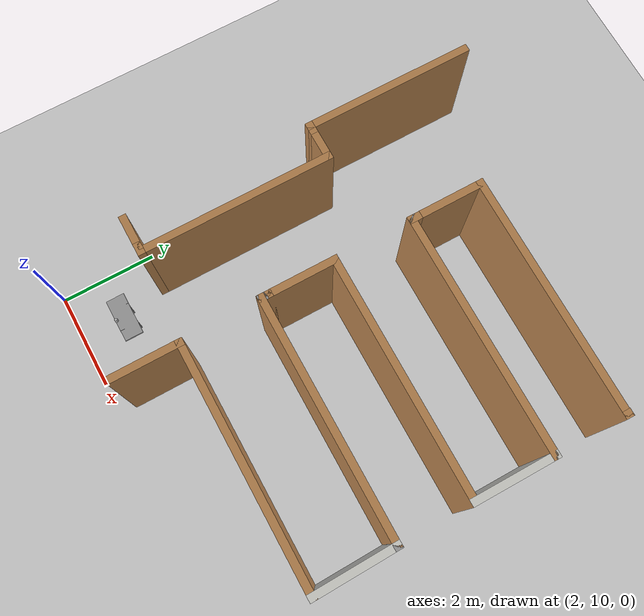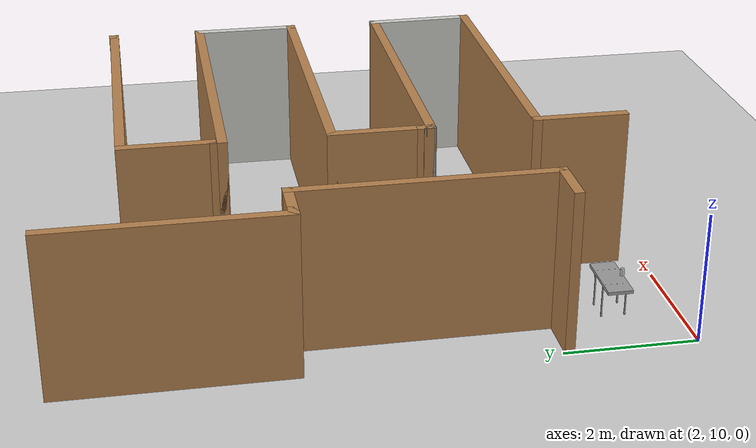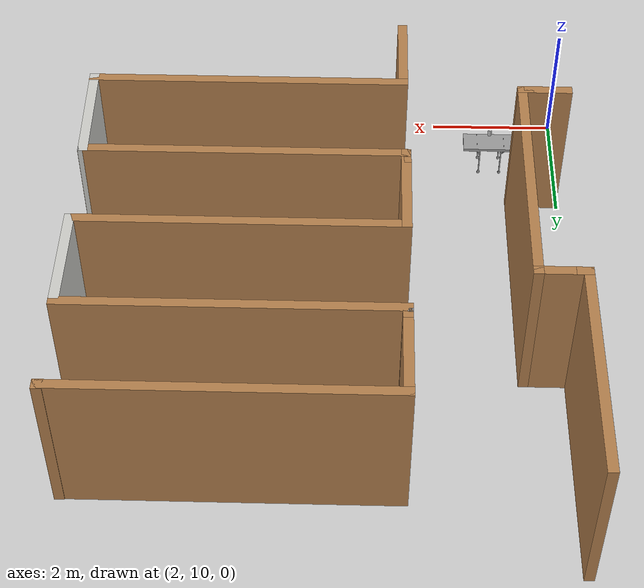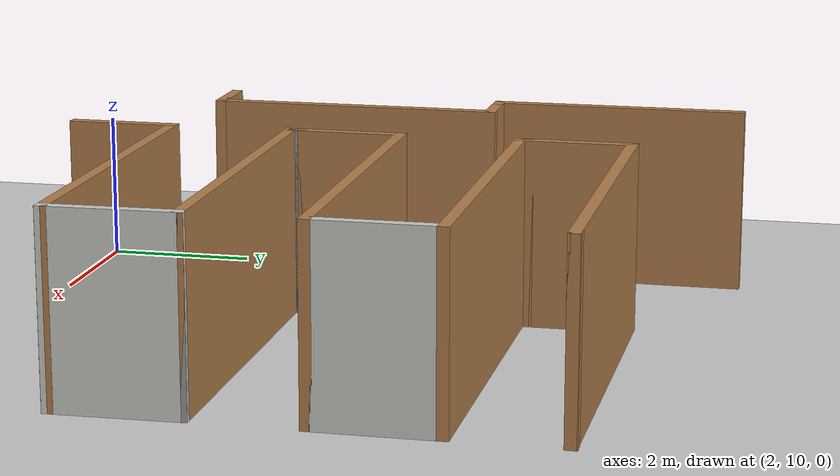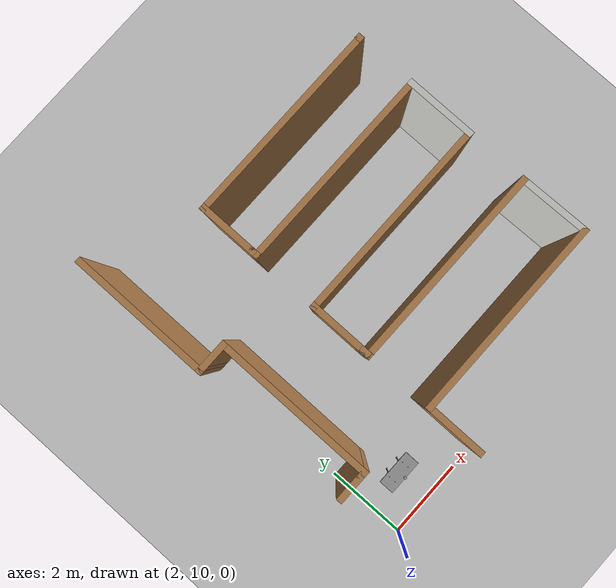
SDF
<sdf version="1.6">
 <world name="default">
  <model name="ground_plane">
   <static>1</static>
   <link name="link">
    <collision name="collision">
     <geometry><plane><normal>0 0 1</normal><size>100 100</size></plane></geometry>
     <surface>
      <contact><collide_bitmask>65535</collide_bitmask></contact>
      <friction><ode><mu>100</mu><mu2>50</mu2></ode></friction>
     </surface>
    </collision>
    <visual name="visual">
     <cast_shadows>0</cast_shadows>
     <geometry><plane><normal>0 0 1</normal><size>100 100</size></plane></geometry>
     <material>
      <script><uri>file://media/materials/scripts/gazebo.material</uri><name>Gazebo/Grey</name></script>
     </material>
    </visual>
   </link>
  </model>
  <model name="ecst_lab_v2">
   <pose>2.38151 7.60499 0 0 -0 -1.57079</pose>
   <link name="Wall_1">
    <collision name="Wall_1_Collision">
     <geometry><box><size>5 0.15 2.5</size></box></geometry>
     <pose>0 0 1.25 0 -0 0</pose>
    </collision>
    <visual name="Wall_1_Visual">
     <pose>0 0 1.25 0 -0 0</pose>
     <geometry><box><size>5 0.15 2.5</size></box></geometry>
     <material>
      <script><uri>file://media/materials/scripts/gazebo.material</uri><name>Gazebo/Wood</name></script>
      <ambient>1 1 1 1</ambient>
     </material>
     <meta><layer>0</layer></meta>
    </visual>
    <pose>-4.16301 4.67727 0 0 -0 -1.5708</pose>
   </link>
   <link name="Wall_117">
    <collision name="Wall_117_Collision">
     <geometry><box><size>0.16 0.15 2.5</size></box></geometry>
     <pose>0 0 1.25 0 -0 0</pose>
    </collision>
    <visual name="Wall_117_Visual">
     <pose>0 0 1.25 0 -0 0</pose>
     <geometry><box><size>0.16 0.15 2.5</size></box></geometry>
     <material>
      <script><uri>file://media/materials/scripts/gazebo.material</uri><name>Gazebo/Wood</name></script>
      <ambient>1 1 1 1</ambient>
     </material>
     <meta><layer>0</layer></meta>
    </visual>
    <pose>-10.3485 7.06822 0 0 -0 0</pose>
   </link>
   <link name="Wall_118">
    <collision name="Wall_118_Collision">
     <geometry><box><size>5 0.15 2.5</size></box></geometry>
     <pose>0 0 1.25 0 -0 0</pose>
    </collision>
    <visual name="Wall_118_Visual">
     <pose>0 0 1.25 0 -0 0</pose>
     <geometry><box><size>5 0.15 2.5</size></box></geometry>
     <material>
      <script><uri>file://media/materials/scripts/gazebo.material</uri><name>Gazebo/Wood</name></script>
      <ambient>1 1 1 1</ambient>
     </material>
     <meta><layer>0</layer></meta>
    </visual>
    <pose>-10.3435 4.64322 0 0 -0 -1.5708</pose>
   </link>
   <link name="Wall_119">
    <collision name="Wall_119_Collision">
     <geometry><box><size>1.5 0.15 2.5</size></box></geometry>
     <pose>0 0 1.25 0 -0 0</pose>
    </collision>
    <visual name="Wall_119_Visual">
     <pose>0 0 1.25 0 -0 0</pose>
     <geometry><box><size>1.5 0.15 2.5</size></box></geometry>
     <material>
      <script><uri>file://media/materials/scripts/gazebo.material</uri><name>Gazebo/Wood</name></script>
      <ambient>1 1 1 1</ambient>
     </material>
     <meta><layer>0</layer></meta>
    </visual>
    <pose>-9.6685 2.21822 0 0 -0 0</pose>
   </link>
   <link name="Wall_120">
    <collision name="Wall_120_Collision">
     <geometry><box><size>0.25 0.15 2.5</size></box></geometry>
     <pose>0 0 1.25 0 -0 0</pose>
    </collision>
    <visual name="Wall_120_Visual">
     <pose>0 0 1.25 0 -0 0</pose>
     <geometry><box><size>0.25 0.15 2.5</size></box></geometry>
     <material>
      <script><uri>file://media/materials/scripts/gazebo.material</uri><name>Gazebo/Wood</name></script>
      <ambient>1 1 1 1</ambient>
     </material>
     <meta><layer>0</layer></meta>
    </visual>
    <pose>-8.9435 2.21822 0 0 -0 0</pose>
   </link>
   <link name="Wall_121">
    <collision name="Wall_121_Collision">
     <geometry><box><size>0.15 0.15 2.5</size></box></geometry>
     <pose>0 0 1.25 0 -0 0</pose>
    </collision>
    <visual name="Wall_121_Visual">
     <pose>0 0 1.25 0 -0 0</pose>
     <geometry><box><size>0.15 0.15 2.5</size></box></geometry>
     <material>
      <script><uri>file://media/materials/scripts/gazebo.material</uri><name>Gazebo/Grey</name></script>
      <ambient>1 1 1 1</ambient>
     </material>
     <meta><layer>0</layer></meta>
    </visual>
    <pose>-8.8935 2.21822 0 0 -0 0</pose>
   </link>
   <link name="Wall_122">
    <collision name="Wall_122_Collision">
     <geometry><box><size>0.16 0.15 2.5</size></box></geometry>
     <pose>0 0 1.25 0 -0 0</pose>
    </collision>
    <visual name="Wall_122_Visual">
     <pose>0 0 1.25 0 -0 0</pose>
     <geometry><box><size>0.16 0.15 2.5</size></box></geometry>
     <material>
      <script><uri>file://media/materials/scripts/gazebo.material</uri><name>Gazebo/Wood</name></script>
      <ambient>1 1 1 1</ambient>
     </material>
     <meta><layer>0</layer></meta>
    </visual>
    <pose>-8.8885 2.21822 0 0 -0 0</pose>
   </link>
   <link name="Wall_123">
    <collision name="Wall_123_Collision">
     <geometry><box><size>5 0.15 2.5</size></box></geometry>
     <pose>0 0 1.25 0 -0 0</pose>
    </collision>
    <visual name="Wall_123_Visual">
     <pose>0 0 1.25 0 -0 0</pose>
     <geometry><box><size>5 0.15 2.5</size></box></geometry>
     <material>
      <script><uri>file://media/materials/scripts/gazebo.material</uri><name>Gazebo/Wood</name></script>
      <ambient>1 1 1 1</ambient>
     </material>
     <meta><layer>0</layer></meta>
    </visual>
    <pose>-8.8835 4.64322 0 0 -0 1.5708</pose>
   </link>
   <link name="Wall_124">
    <collision name="Wall_124_Collision">
     <geometry><box><size>1.75 0.15 2.5</size></box></geometry>
     <pose>0 0 1.25 0 -0 0</pose>
    </collision>
    <visual name="Wall_124_Visual">
     <pose>0 0 1.25 0 -0 0</pose>
     <geometry><box><size>1.75 0.15 2.5</size></box></geometry>
     <material>
      <script><uri>file://media/materials/scripts/gazebo.material</uri><name>Gazebo/CeilingTiled</name></script>
      <ambient>1 1 1 1</ambient>
     </material>
     <meta><layer>0</layer></meta>
    </visual>
    <pose>-8.0835 7.06822 0 0 -0 0</pose>
   </link>
   <link name="Wall_125">
    <collision name="Wall_125_Collision">
     <geometry><box><size>5 0.15 2.5</size></box></geometry>
     <pose>0 0 1.25 0 -0 0</pose>
    </collision>
    <visual name="Wall_125_Visual">
     <pose>0 0 1.25 0 -0 0</pose>
     <geometry><box><size>5 0.15 2.5</size></box></geometry>
     <material>
      <script><uri>file://media/materials/scripts/gazebo.material</uri><name>Gazebo/Wood</name></script>
      <ambient>1 1 1 1</ambient>
     </material>
     <meta><layer>0</layer></meta>
    </visual>
    <pose>-7.2835 4.64322 0 0 -0 -1.5708</pose>
   </link>
   <link name="Wall_126">
    <collision name="Wall_126_Collision">
     <geometry><box><size>1.5 0.15 2.5</size></box></geometry>
     <pose>0 0 1.25 0 -0 0</pose>
    </collision>
    <visual name="Wall_126_Visual">
     <pose>0 0 1.25 0 -0 0</pose>
     <geometry><box><size>1.5 0.15 2.5</size></box></geometry>
     <material>
      <script><uri>file://media/materials/scripts/gazebo.material</uri><name>Gazebo/Wood</name></script>
      <ambient>1 1 1 1</ambient>
     </material>
     <meta><layer>0</layer></meta>
    </visual>
    <pose>-6.6085 2.21822 0 0 -0 0</pose>
   </link>
   <link name="Wall_127">
    <collision name="Wall_127_Collision">
     <geometry><box><size>0.25 0.15 2.5</size></box></geometry>
     <pose>0 0 1.25 0 -0 0</pose>
    </collision>
    <visual name="Wall_127_Visual">
     <pose>0 0 1.25 0 -0 0</pose>
     <geometry><box><size>0.25 0.15 2.5</size></box></geometry>
     <material>
      <script><uri>file://media/materials/scripts/gazebo.material</uri><name>Gazebo/Wood</name></script>
      <ambient>1 1 1 1</ambient>
     </material>
     <meta><layer>0</layer></meta>
    </visual>
    <pose>-5.8835 2.21822 0 0 -0 0</pose>
   </link>
   <link name="Wall_128">
    <collision name="Wall_128_Collision">
     <geometry><box><size>0.15 0.15 2.5</size></box></geometry>
     <pose>0 0 1.25 0 -0 0</pose>
    </collision>
    <visual name="Wall_128_Visual">
     <pose>0 0 1.25 0 -0 0</pose>
     <geometry><box><size>0.15 0.15 2.5</size></box></geometry>
     <material>
      <script><uri>file://media/materials/scripts/gazebo.material</uri><name>Gazebo/Grey</name></script>
      <ambient>1 1 1 1</ambient>
     </material>
     <meta><layer>0</layer></meta>
    </visual>
    <pose>-5.8335 2.21822 0 0 -0 0</pose>
   </link>
   <link name="Wall_129">
    <collision name="Wall_129_Collision">
     <geometry><box><size>0.16 0.15 2.5</size></box></geometry>
     <pose>0 0 1.25 0 -0 0</pose>
    </collision>
    <visual name="Wall_129_Visual">
     <pose>0 0 1.25 0 -0 0</pose>
     <geometry><box><size>0.16 0.15 2.5</size></box></geometry>
     <material>
      <script><uri>file://media/materials/scripts/gazebo.material</uri><name>Gazebo/Wood</name></script>
      <ambient>1 1 1 1</ambient>
     </material>
     <meta><layer>0</layer></meta>
    </visual>
    <pose>-5.8285 2.21822 0 0 -0 0</pose>
   </link>
   <link name="Wall_130">
    <collision name="Wall_130_Collision">
     <geometry><box><size>0.16 0.15 2.5</size></box></geometry>
     <pose>0 0 1.25 0 -0 0</pose>
    </collision>
    <visual name="Wall_130_Visual">
     <pose>0 0 1.25 0 -0 0</pose>
     <geometry><box><size>0.16 0.15 2.5</size></box></geometry>
     <material>
      <script><uri>file://media/materials/scripts/gazebo.material</uri><name>Gazebo/Grey</name></script>
      <ambient>1 1 1 1</ambient>
     </material>
     <meta><layer>0</layer></meta>
    </visual>
    <pose>-5.8185 2.21822 0 0 -0 0</pose>
   </link>
   <link name="Wall_131">
    <collision name="Wall_131_Collision">
     <geometry><box><size>0.16 0.15 2.5</size></box></geometry>
     <pose>0 0 1.25 0 -0 0</pose>
    </collision>
    <visual name="Wall_131_Visual">
     <pose>0 0 1.25 0 -0 0</pose>
     <geometry><box><size>0.16 0.15 2.5</size></box></geometry>
     <material>
      <script><uri>file://media/materials/scripts/gazebo.material</uri><name>Gazebo/Grey</name></script>
      <ambient>1 1 1 1</ambient>
     </material>
     <meta><layer>0</layer></meta>
    </visual>
    <pose>-5.8085 2.21822 0 0 -0 0</pose>
   </link>
   <link name="Wall_132">
    <collision name="Wall_132_Collision">
     <geometry><box><size>0.16 0.15 2.5</size></box></geometry>
     <pose>0 0 1.25 0 -0 0</pose>
    </collision>
    <visual name="Wall_132_Visual">
     <pose>0 0 1.25 0 -0 0</pose>
     <geometry><box><size>0.16 0.15 2.5</size></box></geometry>
     <material>
      <script><uri>file://media/materials/scripts/gazebo.material</uri><name>Gazebo/Wood</name></script>
      <ambient>1 1 1 1</ambient>
     </material>
     <meta><layer>0</layer></meta>
    </visual>
    <pose>-5.7985 2.21822 0 0 -0 0</pose>
   </link>
   <link name="Wall_133">
    <collision name="Wall_133_Collision">
     <geometry><box><size>5 0.15 2.5</size></box></geometry>
     <pose>0 0 1.25 0 -0 0</pose>
    </collision>
    <visual name="Wall_133_Visual">
     <pose>0 0 1.25 0 -0 0</pose>
     <geometry><box><size>5 0.15 2.5</size></box></geometry>
     <material>
      <script><uri>file://media/materials/scripts/gazebo.material</uri><name>Gazebo/Wood</name></script>
      <ambient>1 1 1 1</ambient>
     </material>
     <meta><layer>0</layer></meta>
    </visual>
    <pose>-5.7935 4.64322 0 0 -0 1.5708</pose>
   </link>
   <link name="Wall_134">
    <collision name="Wall_134_Collision">
     <geometry><box><size>0.15 0.15 2.5</size></box></geometry>
     <pose>0 0 1.25 0 -0 0</pose>
    </collision>
    <visual name="Wall_134_Visual">
     <pose>0 0 1.25 0 -0 0</pose>
     <geometry><box><size>0.15 0.15 2.5</size></box></geometry>
     <material>
      <script><uri>file://media/materials/scripts/gazebo.material</uri><name>Gazebo/Grey</name></script>
      <ambient>1 1 1 1</ambient>
     </material>
     <meta><layer>0</layer></meta>
    </visual>
    <pose>-5.7935 7.06822 0 0 -0 0</pose>
   </link>
   <link name="Wall_135">
    <collision name="Wall_135_Collision">
     <geometry><box><size>0.15 0.15 2.5</size></box></geometry>
     <pose>0 0 1.25 0 -0 0</pose>
    </collision>
    <visual name="Wall_135_Visual">
     <pose>0 0 1.25 0 -0 0</pose>
     <geometry><box><size>0.15 0.15 2.5</size></box></geometry>
     <material>
      <script><uri>file://media/materials/scripts/gazebo.material</uri><name>Gazebo/Grey</name></script>
      <ambient>1 1 1 1</ambient>
     </material>
     <meta><layer>0</layer></meta>
    </visual>
    <pose>-5.7935 7.06822 0 0 -0 0</pose>
   </link>
   <link name="Wall_136">
    <collision name="Wall_136_Collision">
     <geometry><box><size>0.15 0.15 2.5</size></box></geometry>
     <pose>0 0 1.25 0 -0 0</pose>
    </collision>
    <visual name="Wall_136_Visual">
     <pose>0 0 1.25 0 -0 0</pose>
     <geometry><box><size>0.15 0.15 2.5</size></box></geometry>
     <material>
      <script><uri>file://media/materials/scripts/gazebo.material</uri><name>Gazebo/Grey</name></script>
      <ambient>1 1 1 1</ambient>
     </material>
     <meta><layer>0</layer></meta>
    </visual>
    <pose>-5.7935 7.06822 0 0 -0 0</pose>
   </link>
   <link name="Wall_137">
    <collision name="Wall_137_Collision">
     <geometry><box><size>0.15 0.15 2.5</size></box></geometry>
     <pose>0 0 1.25 0 -0 0</pose>
    </collision>
    <visual name="Wall_137_Visual">
     <pose>0 0 1.25 0 -0 0</pose>
     <geometry><box><size>0.15 0.15 2.5</size></box></geometry>
     <material>
      <script><uri>file://media/materials/scripts/gazebo.material</uri><name>Gazebo/Grey</name></script>
      <ambient>1 1 1 1</ambient>
     </material>
     <meta><layer>0</layer></meta>
    </visual>
    <pose>-5.7935 7.06822 0 0 -0 0</pose>
   </link>
   <link name="Wall_138">
    <collision name="Wall_138_Collision">
     <geometry><box><size>1.78084 0.15 2.5</size></box></geometry>
     <pose>0 0 1.25 0 -0 0</pose>
    </collision>
    <visual name="Wall_138_Visual">
     <pose>0 0 1.25 0 -0 0</pose>
     <geometry><box><size>1.78084 0.15 2.5</size></box></geometry>
     <material>
      <script><uri>file://media/materials/scripts/gazebo.material</uri><name>Gazebo/CeilingTiled</name></script>
      <ambient>1 1 1 1</ambient>
     </material>
     <meta><layer>0</layer></meta>
    </visual>
    <pose>-4.97826 7.08524 0 0 -0 0.020886</pose>
   </link>
   <link name="Wall_2">
    <collision name="Wall_2_Collision">
     <geometry><box><size>1.5 0.15 2.5</size></box></geometry>
     <pose>0 0 1.25 0 -0 0</pose>
    </collision>
    <visual name="Wall_2_Visual">
     <pose>0 0 1.25 0 -0 0</pose>
     <geometry><box><size>1.5 0.15 2.5</size></box></geometry>
     <material>
      <script><uri>file://media/materials/scripts/gazebo.material</uri><name>Gazebo/Wood</name></script>
      <ambient>1 1 1 1</ambient>
     </material>
     <meta><layer>0</layer></meta>
    </visual>
    <pose>-3.48801 2.25228 0 0 -0 0</pose>
   </link>
   <link name="Wall_76">
    <collision name="Wall_76_Collision">
     <geometry><box><size>0.75 0.15 2.5</size></box></geometry>
     <pose>0 0 1.25 0 -0 0</pose>
    </collision>
    <visual name="Wall_76_Visual">
     <pose>0 0 1.25 0 -0 0</pose>
     <geometry><box><size>0.75 0.15 2.5</size></box></geometry>
     <material>
      <script><uri>file://media/materials/scripts/gazebo.material</uri><name>Gazebo/Wood</name></script>
      <ambient>1 1 1 1</ambient>
     </material>
     <meta><layer>0</layer></meta>
    </visual>
    <pose>-4.29657 -0.002274 0 0 -0 1.5708</pose>
   </link>
   <link name="Wall_77">
    <collision name="Wall_77_Collision">
     <geometry><box><size>0.25 0.15 2.5</size></box></geometry>
     <pose>0 0 1.25 0 -0 0</pose>
    </collision>
    <visual name="Wall_77_Visual">
     <pose>0 0 1.25 0 -0 0</pose>
     <geometry><box><size>0.25 0.15 2.5</size></box></geometry>
     <material>
      <script><uri>file://media/materials/scripts/gazebo.material</uri><name>Gazebo/Wood</name></script>
      <ambient>1 1 1 1</ambient>
     </material>
     <meta><layer>0</layer></meta>
    </visual>
    <pose>-4.29657 0.347726 0 0 -0 1.5708</pose>
   </link>
   <link name="Wall_78">
    <collision name="Wall_78_Collision">
     <geometry><box><size>4 0.15 2.5</size></box></geometry>
     <pose>0 0 1.25 0 -0 0</pose>
    </collision>
    <visual name="Wall_78_Visual">
     <pose>0 0 1.25 0 -0 0</pose>
     <geometry><box><size>4 0.15 2.5</size></box></geometry>
     <material>
      <script><uri>file://media/materials/scripts/gazebo.material</uri><name>Gazebo/Wood</name></script>
      <ambient>1 1 1 1</ambient>
     </material>
     <meta><layer>0</layer></meta>
    </visual>
    <pose>-6.22157 0.397726 0 0 -0 3.14159</pose>
   </link>
   <link name="Wall_79">
    <collision name="Wall_79_Collision">
     <geometry><box><size>0.75 0.15 2.5</size></box></geometry>
     <pose>0 0 1.25 0 -0 0</pose>
    </collision>
    <visual name="Wall_79_Visual">
     <pose>0 0 1.25 0 -0 0</pose>
     <geometry><box><size>0.75 0.15 2.5</size></box></geometry>
     <material>
      <script><uri>file://media/materials/scripts/gazebo.material</uri><name>Gazebo/Wood</name></script>
      <ambient>1 1 1 1</ambient>
     </material>
     <meta><layer>0</layer></meta>
    </visual>
    <pose>-8.14657 0.097726 0 0 -0 -1.5708</pose>
   </link>
   <link name="Wall_80">
    <collision name="Wall_80_Collision">
     <geometry><box><size>0.25 0.15 2.5</size></box></geometry>
     <pose>0 0 1.25 0 -0 0</pose>
    </collision>
    <visual name="Wall_80_Visual">
     <pose>0 0 1.25 0 -0 0</pose>
     <geometry><box><size>0.25 0.15 2.5</size></box></geometry>
     <material>
      <script><uri>file://media/materials/scripts/gazebo.material</uri><name>Gazebo/Wood</name></script>
      <ambient>1 1 1 1</ambient>
     </material>
     <meta><layer>0</layer></meta>
    </visual>
    <pose>-8.14657 -0.252274 0 0 -0 -1.5708</pose>
   </link>
   <link name="Wall_81">
    <collision name="Wall_81_Collision">
     <geometry><box><size>3.5 0.15 2.5</size></box></geometry>
     <pose>0 0 1.25 0 -0 0</pose>
    </collision>
    <visual name="Wall_81_Visual">
     <pose>0 0 1.25 0 -0 0</pose>
     <geometry><box><size>3.5 0.15 2.5</size></box></geometry>
     <material>
      <script><uri>file://media/materials/scripts/gazebo.material</uri><name>Gazebo/Wood</name></script>
      <ambient>1 1 1 1</ambient>
     </material>
     <meta><layer>0</layer></meta>
    </visual>
    <pose>-9.82157 -0.302274 0 0 -0 3.14159</pose>
   </link>
   <static>1</static>
  </model>
  <model name="ecst_table_v5">
   <link name="link_1">
    <inertial>
     <mass>5</mass>
     <inertia>
      <ixx>0.188383</ixx>
      <ixy>0</ixy>
      <ixz>0</ixz>
      <iyy>0.470263</iyy>
      <iyz>0</iyz>
      <izz>0.402848</izz>
     </inertia>
    </inertial>
    <visual name="visual">
     <geometry>
      <mesh><uri>/home/jason/Downloads/CALI_TABLE_MODEL_METERS_2_updated.stl</uri><scale>1 1 1</scale></mesh>
     </geometry>
     <material>
      <lighting>1</lighting>
      <script><uri>file://media/materials/scripts/gazebo.material</uri><name>Gazebo/Grey</name></script>
      <emissive>0 0 0 1</emissive>
      <shader type="vertex"><normal_map>__default__</normal_map></shader>
      <ambient>0.3 0.3 0.3 1</ambient>
      <diffuse>0.7 0.7 0.7 1</diffuse>
      <specular>0.01 0.01 0.01 1</specular>
     </material>
    </visual>
    <collision name="collision">
     <geometry><box><size>0.906426 0.381 0.554037</size></box></geometry>
     <surface>
      <friction>
       <ode><mu>1</mu><mu2>1</mu2><fdir1>0 0 0</fdir1><slip1>0</slip1><slip2>0</slip2></ode>
       <torsional>
        <coefficient>1</coefficient>
        <patch_radius>0</patch_radius>
        <surface_radius>0</surface_radius>
        <use_patch_radius>1</use_patch_radius>
        <ode><slip>0</slip></ode>
       </torsional>
      </friction>
      <bounce><restitution_coefficient>0</restitution_coefficient><threshold>1e+06</threshold></bounce>
      <contact>
       <collide_without_contact>0</collide_without_contact>
       <collide_without_contact_bitmask>1</collide_without_contact_bitmask>
       <collide_bitmask>1</collide_bitmask>
       <ode>
        <soft_cfm>0</soft_cfm>
        <soft_erp>0.2</soft_erp>
        <kp>1e+13</kp>
        <kd>1</kd>
        <max_vel>0.01</max_vel>
        <min_depth>0</min_depth>
       </ode>
       <bullet>
        <split_impulse>1</split_impulse>
        <split_impulse_penetration_threshold>-0.01</split_impulse_penetration_threshold>
        <soft_cfm>0</soft_cfm>
        <soft_erp>0.2</soft_erp>
        <kp>1e+13</kp>
        <kd>1</kd>
       </bullet>
      </contact>
     </surface>
    </collision>
   </link>
   <static>0</static>
   <pose>3.08887 10.975 0.277013 0 -1.2e-05 -0.003042</pose>
  </model>
  <model name="coke_can">
   <link name="link">
    <inertial>
     <pose>0 0 0.06 0 -0 0</pose>
     <mass>0.39</mass>
     <inertia>
      <ixx>0.00055575</ixx>
      <ixy>0</ixy>
      <ixz>0</ixz>
      <iyy>0.00055575</iyy>
      <iyz>0</iyz>
      <izz>0.0001755</izz>
     </inertia>
    </inertial>
    <collision name="collision">
     <pose>0.003937 0.004724 -0.18 0 -0 0</pose>
     <geometry><mesh><uri>model://coke_can/meshes/coke_can.dae</uri></mesh></geometry>
     <surface>
      <friction><ode><mu>1</mu><mu2>1</mu2></ode></friction>
      <contact><ode><kp>1e+07</kp><kd>1</kd><min_depth>0.001</min_depth><max_vel>0.1</max_vel></ode></contact>
     </surface>
    </collision>
    <visual name="visual">
     <pose>0.003937 0.004724 -0.18 0 -0 0</pose>
     <geometry><mesh><uri>model://coke_can/meshes/coke_can.dae</uri></mesh></geometry>
    </visual>
   </link>
   <pose>3.09491 10.8104 0.551471 -0.011266 0.004034 0.021266</pose>
  </model>
 </world>
</sdf>
